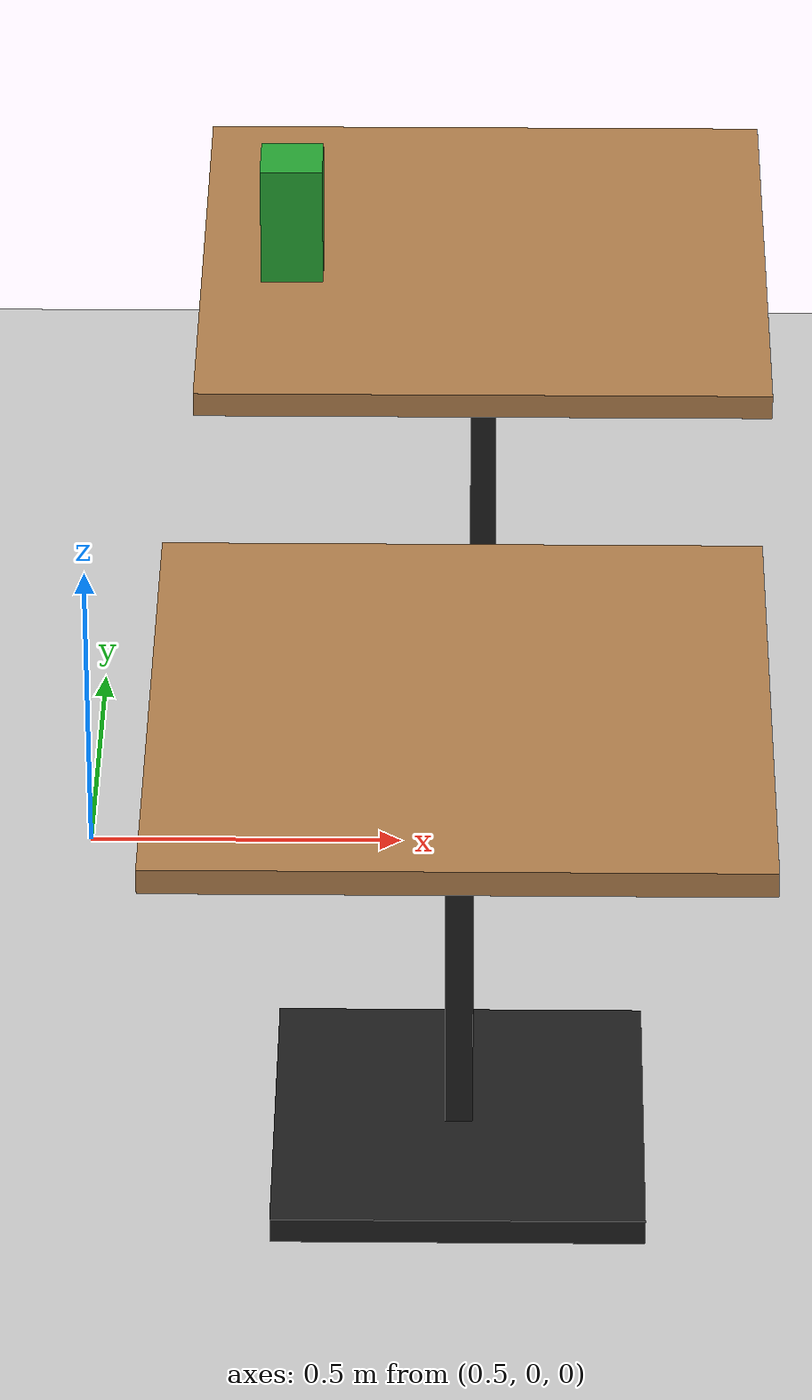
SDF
<sdf version="1.6">
 <world name="default">
  <light name="sun" type="directional">
   <pose>0 0 10 0 -0 0</pose>
   <diffuse>0.8 0.8 0.8 1</diffuse>
   <specular>0.2 0.2 0.2 1</specular>
   <attenuation>
    <range>1000</range>
    <constant>0.9</constant>
    <linear>0.01</linear>
    <quadratic>0.001</quadratic>
   </attenuation>
   <direction>-0.5 0.1 -0.9</direction>
  </light>
  <physics name="dart_1ms" default="1" type="dart">
   <max_step_size>0.001</max_step_size>
   <real_time_factor>1</real_time_factor>
   <real_time_update_rate>1000</real_time_update_rate>
   <dart><solver><solver_type>pgs</solver_type></solver></dart>
  </physics>
  <physics name="dart_2ms" default="0" type="dart">
   <max_step_size>0.002</max_step_size>
   <real_time_factor>1</real_time_factor>
   <real_time_update_rate>500</real_time_update_rate>
   <dart><solver><solver_type>pgs</solver_type></solver></dart>
  </physics>
  <physics name="dart_3ms" default="0" type="dart">
   <max_step_size>0.003</max_step_size>
   <real_time_factor>1</real_time_factor>
   <real_time_update_rate>333</real_time_update_rate>
   <dart><solver><solver_type>pgs</solver_type></solver></dart>
  </physics>
  <physics name="ode_1ms" default="0" type="ode">
   <max_step_size>0.001</max_step_size>
   <real_time_factor>1</real_time_factor>
   <real_time_update_rate>1000</real_time_update_rate>
  </physics>
  <physics name="ode_2ms" default="0" type="ode">
   <max_step_size>0.002</max_step_size>
   <real_time_factor>1</real_time_factor>
   <real_time_update_rate>500</real_time_update_rate>
  </physics>
  <physics name="ode_3ms" default="0" type="ode">
   <max_step_size>0.003</max_step_size>
   <real_time_factor>1</real_time_factor>
   <real_time_update_rate>333</real_time_update_rate>
  </physics>
  <model name="ground_plane">
   <static>1</static>
   <link name="link">
    <collision name="collision">
     <geometry><plane><normal>0 0 1</normal><size>100 100</size></plane></geometry>
     <surface>
      <contact><collide_bitmask>65535</collide_bitmask></contact>
      <friction><ode><mu>100</mu><mu2>50</mu2></ode></friction>
     </surface>
    </collision>
    <visual name="visual">
     <cast_shadows>0</cast_shadows>
     <geometry><plane><normal>0 0 1</normal><size>100 100</size></plane></geometry>
     <material>
      <script><uri>file://media/materials/scripts/gazebo.material</uri><name>Gazebo/Grey</name></script>
     </material>
    </visual>
   </link>
  </model>
  <gravity>0 0 -9.8</gravity>
  <magnetic_field>6e-06 2.3e-05 -4.2e-05</magnetic_field>
  <atmosphere type="adiabatic"/>
  <scene><ambient>0.4 0.4 0.4 1</ambient><background>0.7 0.7 0.7 1</background><shadows>1</shadows></scene>
  <spherical_coordinates>
   <surface_model>EARTH_WGS84</surface_model>
   <latitude_deg>0</latitude_deg>
   <longitude_deg>0</longitude_deg>
   <elevation>0</elevation>
   <heading_deg>0</heading_deg>
  </spherical_coordinates>
  <model name="table2">
   <link name="link">
    <inertial>
     <inertia><ixx>1</ixx><ixy>0</ixy><ixz>0</ixz><iyy>1</iyy><iyz>0</iyz><izz>1</izz></inertia>
     <mass>1</mass>
    </inertial>
    <visual name="surface">
     <pose>0 0 0.755 0 -0 0</pose>
     <geometry><box><size>0.913 0.913 0.04</size></box></geometry>
     <material>
      <script><uri>file://media/materials/scripts/gazebo.material</uri><name>Gazebo/WoodFloor</name></script>
      <shader type="pixel"/>
     </material>
    </visual>
    <visual name="column">
     <pose>0 0 0.37 0 -0 0</pose>
     <geometry><box><size>0.042 0.042 0.74</size></box></geometry>
     <material>
      <script><uri>file://media/materials/scripts/gazebo.material</uri><name>Gazebo/Black</name></script>
      <shader type="pixel"/>
     </material>
    </visual>
    <visual name="base">
     <pose>0 0 0.02 0 -0 0</pose>
     <geometry><box><size>0.56 0.56 0.04</size></box></geometry>
     <material>
      <script><uri>file://media/materials/scripts/gazebo.material</uri><name>Gazebo/Black</name></script>
      <shader type="pixel"/>
     </material>
    </visual>
    <collision name="surface">
     <pose>0 0 0.755 0 -0 0</pose>
     <geometry><box><size>0.913 0.913 0.04</size></box></geometry>
     <surface>
      <friction>
       <ode><mu>1</mu><mu2>1</mu2><fdir1>0 0 0</fdir1><slip1>0</slip1><slip2>0</slip2></ode>
       <torsional>
        <coefficient>1</coefficient>
        <patch_radius>0</patch_radius>
        <surface_radius>0</surface_radius>
        <use_patch_radius>1</use_patch_radius>
        <ode><slip>0</slip></ode>
       </torsional>
      </friction>
      <bounce><restitution_coefficient>0</restitution_coefficient><threshold>1e+06</threshold></bounce>
      <contact>
       <collide_without_contact>0</collide_without_contact>
       <collide_without_contact_bitmask>1</collide_without_contact_bitmask>
       <collide_bitmask>1</collide_bitmask>
       <ode>
        <soft_cfm>0</soft_cfm>
        <soft_erp>0.2</soft_erp>
        <kp>1e+13</kp>
        <kd>1</kd>
        <max_vel>0.01</max_vel>
        <min_depth>0</min_depth>
       </ode>
       <bullet>
        <split_impulse>1</split_impulse>
        <split_impulse_penetration_threshold>-0.01</split_impulse_penetration_threshold>
        <soft_cfm>0</soft_cfm>
        <soft_erp>0.2</soft_erp>
        <kp>1e+13</kp>
        <kd>1</kd>
       </bullet>
      </contact>
     </surface>
    </collision>
    <collision name="column">
     <pose>0 0 0.37 0 -0 0</pose>
     <geometry><box><size>0.042 0.042 0.74</size></box></geometry>
     <surface>
      <friction>
       <ode><mu>1</mu><mu2>1</mu2><fdir1>0 0 0</fdir1><slip1>0</slip1><slip2>0</slip2></ode>
       <torsional>
        <coefficient>1</coefficient>
        <patch_radius>0</patch_radius>
        <surface_radius>0</surface_radius>
        <use_patch_radius>1</use_patch_radius>
        <ode><slip>0</slip></ode>
       </torsional>
      </friction>
      <bounce><restitution_coefficient>0</restitution_coefficient><threshold>1e+06</threshold></bounce>
      <contact>
       <collide_without_contact>0</collide_without_contact>
       <collide_without_contact_bitmask>1</collide_without_contact_bitmask>
       <collide_bitmask>1</collide_bitmask>
       <ode>
        <soft_cfm>0</soft_cfm>
        <soft_erp>0.2</soft_erp>
        <kp>1e+13</kp>
        <kd>1</kd>
        <max_vel>0.01</max_vel>
        <min_depth>0</min_depth>
       </ode>
       <bullet>
        <split_impulse>1</split_impulse>
        <split_impulse_penetration_threshold>-0.01</split_impulse_penetration_threshold>
        <soft_cfm>0</soft_cfm>
        <soft_erp>0.2</soft_erp>
        <kp>1e+13</kp>
        <kd>1</kd>
       </bullet>
      </contact>
     </surface>
    </collision>
    <collision name="base">
     <pose>0 0 0.02 0 -0 0</pose>
     <geometry><box><size>0.56 0.56 0.04</size></box></geometry>
     <surface>
      <friction>
       <ode><mu>1</mu><mu2>1</mu2><fdir1>0 0 0</fdir1><slip1>0</slip1><slip2>0</slip2></ode>
       <torsional>
        <coefficient>1</coefficient>
        <patch_radius>0</patch_radius>
        <surface_radius>0</surface_radius>
        <use_patch_radius>1</use_patch_radius>
        <ode><slip>0</slip></ode>
       </torsional>
      </friction>
      <bounce><restitution_coefficient>0</restitution_coefficient><threshold>1e+06</threshold></bounce>
      <contact>
       <collide_without_contact>0</collide_without_contact>
       <collide_without_contact_bitmask>1</collide_without_contact_bitmask>
       <collide_bitmask>1</collide_bitmask>
       <ode>
        <soft_cfm>0</soft_cfm>
        <soft_erp>0.2</soft_erp>
        <kp>1e+13</kp>
        <kd>1</kd>
        <max_vel>0.01</max_vel>
        <min_depth>0</min_depth>
       </ode>
       <bullet>
        <split_impulse>1</split_impulse>
        <split_impulse_penetration_threshold>-0.01</split_impulse_penetration_threshold>
        <soft_cfm>0</soft_cfm>
        <soft_erp>0.2</soft_erp>
        <kp>1e+13</kp>
        <kd>1</kd>
       </bullet>
      </contact>
     </surface>
    </collision>
   </link>
   <static>1</static>
   <pose>1.12961 0.551467 -3e-06 0 -6e-06 0</pose>
  </model>
  <model name="table1">
   <link name="link">
    <inertial>
     <inertia><ixx>1</ixx><ixy>0</ixy><ixz>0</ixz><iyy>1</iyy><iyz>0</iyz><izz>1</izz></inertia>
     <mass>1</mass>
    </inertial>
    <visual name="column">
     <pose>0 0 0.37 0 -0 0</pose>
     <geometry><box><size>0.042 0.042 0.74</size></box></geometry>
     <material>
      <script><uri>file://media/materials/scripts/gazebo.material</uri><name>Gazebo/Black</name></script>
      <shader type="pixel"/>
     </material>
    </visual>
    <visual name="base">
     <pose>0 0 0.02 0 -0 0</pose>
     <geometry><box><size>0.56 0.56 0.04</size></box></geometry>
     <material>
      <script><uri>file://media/materials/scripts/gazebo.material</uri><name>Gazebo/Black</name></script>
      <shader type="pixel"/>
     </material>
    </visual>
    <visual name="surface">
     <pose>0 0 0.755 0 -0 0</pose>
     <geometry><box><size>0.913 0.913 0.04</size></box></geometry>
     <material>
      <script><uri>file://media/materials/scripts/gazebo.material</uri><name>Gazebo/WoodFloor</name></script>
      <shader type="pixel"/>
     </material>
    </visual>
    <collision name="surface">
     <pose>0 0 0.755 0 -0 0</pose>
     <geometry><box><size>0.913 0.913 0.04</size></box></geometry>
     <surface>
      <friction>
       <ode><mu>1</mu><mu2>1</mu2><fdir1>0 0 0</fdir1><slip1>0</slip1><slip2>0</slip2></ode>
       <torsional>
        <coefficient>1</coefficient>
        <patch_radius>0</patch_radius>
        <surface_radius>0</surface_radius>
        <use_patch_radius>1</use_patch_radius>
        <ode><slip>0</slip></ode>
       </torsional>
      </friction>
      <bounce><restitution_coefficient>0</restitution_coefficient><threshold>1e+06</threshold></bounce>
      <contact>
       <collide_without_contact>0</collide_without_contact>
       <collide_without_contact_bitmask>1</collide_without_contact_bitmask>
       <collide_bitmask>1</collide_bitmask>
       <ode>
        <soft_cfm>0</soft_cfm>
        <soft_erp>0.2</soft_erp>
        <kp>1e+13</kp>
        <kd>1</kd>
        <max_vel>0.01</max_vel>
        <min_depth>0</min_depth>
       </ode>
       <bullet>
        <split_impulse>1</split_impulse>
        <split_impulse_penetration_threshold>-0.01</split_impulse_penetration_threshold>
        <soft_cfm>0</soft_cfm>
        <soft_erp>0.2</soft_erp>
        <kp>1e+13</kp>
        <kd>1</kd>
       </bullet>
      </contact>
     </surface>
    </collision>
    <collision name="column">
     <pose>0 0 0.37 0 -0 0</pose>
     <geometry><box><size>0.042 0.042 0.74</size></box></geometry>
     <surface>
      <friction>
       <ode><mu>1</mu><mu2>1</mu2><fdir1>0 0 0</fdir1><slip1>0</slip1><slip2>0</slip2></ode>
       <torsional>
        <coefficient>1</coefficient>
        <patch_radius>0</patch_radius>
        <surface_radius>0</surface_radius>
        <use_patch_radius>1</use_patch_radius>
        <ode><slip>0</slip></ode>
       </torsional>
      </friction>
      <bounce><restitution_coefficient>0</restitution_coefficient><threshold>1e+06</threshold></bounce>
      <contact>
       <collide_without_contact>0</collide_without_contact>
       <collide_without_contact_bitmask>1</collide_without_contact_bitmask>
       <collide_bitmask>1</collide_bitmask>
       <ode>
        <soft_cfm>0</soft_cfm>
        <soft_erp>0.2</soft_erp>
        <kp>1e+13</kp>
        <kd>1</kd>
        <max_vel>0.01</max_vel>
        <min_depth>0</min_depth>
       </ode>
       <bullet>
        <split_impulse>1</split_impulse>
        <split_impulse_penetration_threshold>-0.01</split_impulse_penetration_threshold>
        <soft_cfm>0</soft_cfm>
        <soft_erp>0.2</soft_erp>
        <kp>1e+13</kp>
        <kd>1</kd>
       </bullet>
      </contact>
     </surface>
    </collision>
    <collision name="base">
     <pose>0 0 0.02 0 -0 0</pose>
     <geometry><box><size>0.56 0.56 0.04</size></box></geometry>
     <surface>
      <friction>
       <ode><mu>1</mu><mu2>1</mu2><fdir1>0 0 0</fdir1><slip1>0</slip1><slip2>0</slip2></ode>
       <torsional>
        <coefficient>1</coefficient>
        <patch_radius>0</patch_radius>
        <surface_radius>0</surface_radius>
        <use_patch_radius>1</use_patch_radius>
        <ode><slip>0</slip></ode>
       </torsional>
      </friction>
      <bounce><restitution_coefficient>0</restitution_coefficient><threshold>1e+06</threshold></bounce>
      <contact>
       <collide_without_contact>0</collide_without_contact>
       <collide_without_contact_bitmask>1</collide_without_contact_bitmask>
       <collide_bitmask>1</collide_bitmask>
       <ode>
        <soft_cfm>0</soft_cfm>
        <soft_erp>0.2</soft_erp>
        <kp>1e+13</kp>
        <kd>1</kd>
        <max_vel>0.01</max_vel>
        <min_depth>0</min_depth>
       </ode>
       <bullet>
        <split_impulse>1</split_impulse>
        <split_impulse_penetration_threshold>-0.01</split_impulse_penetration_threshold>
        <soft_cfm>0</soft_cfm>
        <soft_erp>0.2</soft_erp>
        <kp>1e+13</kp>
        <kd>1</kd>
       </bullet>
      </contact>
     </surface>
    </collision>
   </link>
   <static>1</static>
   <pose>1.10009 -0.823471 -1e-06 -1e-06 1e-06 -0.00063</pose>
  </model>
  <model name="object1">
   <link name="link">
    <inertial>
     <mass>0.3</mass>
     <inertia><ixx>0.00125</ixx><ixy>0</ixy><ixz>0</ixz><iyy>0.00125</iyy><iyz>0</iyz><izz>0.0005</izz></inertia>
    </inertial>
    <visual name="box">
     <geometry><box><size>0.1 0.1 0.2</size></box></geometry>
     <material>
      <script><uri>file://media/materials/scripts/gazebo.material</uri><name>Gazebo/Green</name></script>
      <shader type="pixel"/>
     </material>
    </visual>
    <collision name="box">
     <geometry><box><size>0.1 0.1 0.2</size></box></geometry>
     <surface>
      <friction>
       <ode><mu>1</mu><mu2>1</mu2><fdir1>0 0 0</fdir1><slip1>0</slip1><slip2>0</slip2></ode>
       <torsional>
        <coefficient>1</coefficient>
        <patch_radius>0</patch_radius>
        <surface_radius>0</surface_radius>
        <use_patch_radius>1</use_patch_radius>
        <ode><slip>0</slip></ode>
       </torsional>
      </friction>
      <bounce><restitution_coefficient>0</restitution_coefficient><threshold>1e+06</threshold></bounce>
      <contact>
       <collide_without_contact>0</collide_without_contact>
       <collide_without_contact_bitmask>1</collide_without_contact_bitmask>
       <collide_bitmask>1</collide_bitmask>
       <ode>
        <soft_cfm>0</soft_cfm>
        <soft_erp>0.2</soft_erp>
        <kp>1e+13</kp>
        <kd>1</kd>
        <max_vel>0.01</max_vel>
        <min_depth>0</min_depth>
       </ode>
       <bullet>
        <split_impulse>1</split_impulse>
        <split_impulse_penetration_threshold>-0.01</split_impulse_penetration_threshold>
        <soft_cfm>0</soft_cfm>
        <soft_erp>0.2</soft_erp>
        <kp>1e+13</kp>
        <kd>1</kd>
       </bullet>
      </contact>
     </surface>
    </collision>
   </link>
   <static>0</static>
   <pose>0.81978 0.513079 0.874995 -0 -7e-06 -0.000561</pose>
  </model>
 </world>
</sdf>
